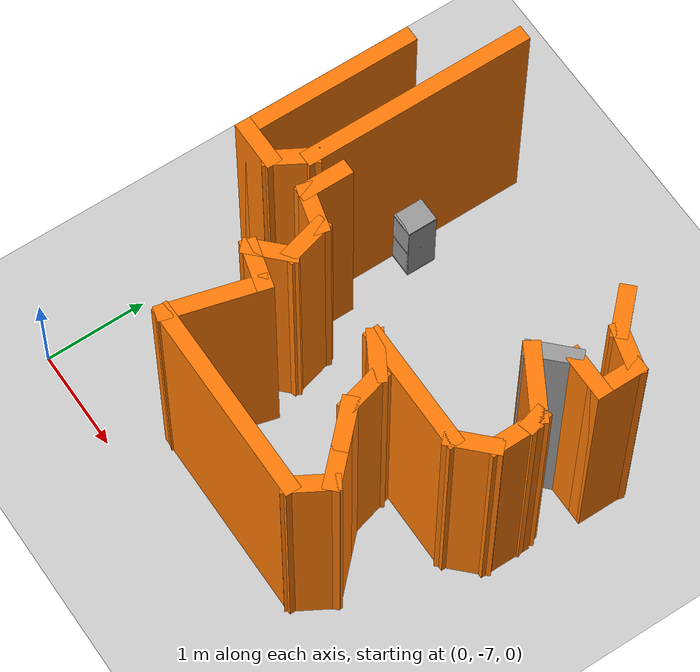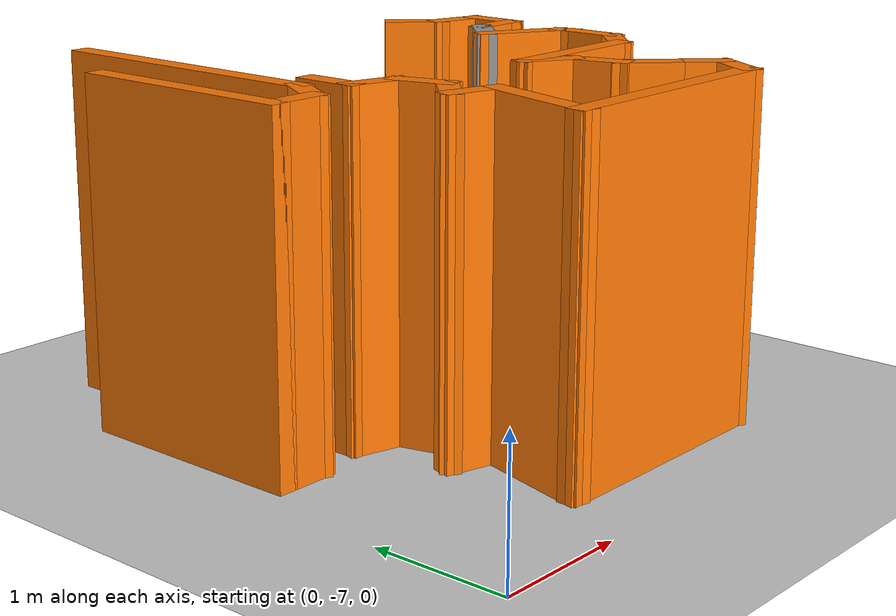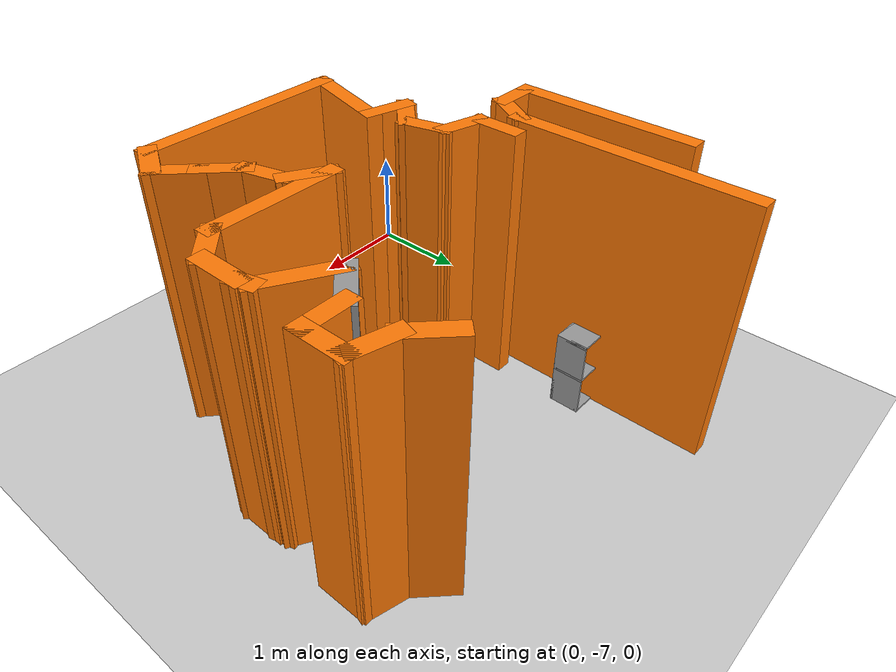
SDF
<sdf version="1.7">
 <world name="default">
  <model name="ground_plane">
   <static>1</static>
   <link name="link">
    <collision name="collision">
     <geometry><plane><normal>0 0 1</normal><size>100 100</size></plane></geometry>
     <surface>
      <contact><collide_bitmask>65535</collide_bitmask></contact>
      <friction><ode><mu>100</mu><mu2>50</mu2></ode></friction>
     </surface>
    </collision>
    <visual name="visual">
     <cast_shadows>0</cast_shadows>
     <geometry><plane><normal>0 0 1</normal><size>100 100</size></plane></geometry>
     <material>
      <script><uri>file://media/materials/scripts/gazebo.material</uri><name>Gazebo/Grey</name></script>
     </material>
    </visual>
   </link>
  </model>
  <model name="map_4">
   <pose>0.04124 -0.27835 0 0 -0 0</pose>
   <link name="Wall_100">
    <collision name="Wall_100_Collision">
     <geometry><box><size>0.5 0.15 2.5</size></box></geometry>
     <pose>0 0 1.25 0 -0 0</pose>
    </collision>
    <visual name="Wall_100_Visual">
     <pose>0 0 1.25 0 -0 0</pose>
     <geometry><box><size>0.5 0.15 2.5</size></box></geometry>
     <material>
      <script><uri>file://media/materials/scripts/gazebo.material</uri><name>Gazebo/Grey</name></script>
      <ambient>0.996078 0.47451 0.0196078 1</ambient>
     </material>
     <meta><layer>0</layer></meta>
    </visual>
    <pose>3.63966 -3.64447 0 0 -0 0</pose>
   </link>
   <link name="Wall_101">
    <collision name="Wall_101_Collision">
     <geometry><box><size>0.5 0.15 2.5</size></box></geometry>
     <pose>0 0 1.25 0 -0 0</pose>
    </collision>
    <visual name="Wall_101_Visual">
     <pose>0 0 1.25 0 -0 0</pose>
     <geometry><box><size>0.5 0.15 2.5</size></box></geometry>
     <material>
      <script><uri>file://media/materials/scripts/gazebo.material</uri><name>Gazebo/Grey</name></script>
      <ambient>0.996078 0.47451 0.0196078 1</ambient>
     </material>
     <meta><layer>0</layer></meta>
    </visual>
    <pose>3.81466 -3.46947 0 0 -0 1.5708</pose>
   </link>
   <link name="Wall_102">
    <collision name="Wall_102_Collision">
     <geometry><box><size>0.5 0.15 2.5</size></box></geometry>
     <pose>0 0 1.25 0 -0 0</pose>
    </collision>
    <visual name="Wall_102_Visual">
     <pose>0 0 1.25 0 -0 0</pose>
     <geometry><box><size>0.5 0.15 2.5</size></box></geometry>
     <material>
      <script><uri>file://media/materials/scripts/gazebo.material</uri><name>Gazebo/Grey</name></script>
      <ambient>0.996078 0.47451 0.0196078 1</ambient>
     </material>
     <meta><layer>0</layer></meta>
    </visual>
    <pose>3.64562 -3.24918 0 0 -0 2.87979</pose>
   </link>
   <link name="Wall_103">
    <collision name="Wall_103_Collision">
     <geometry><box><size>0.5 0.15 2.5</size></box></geometry>
     <pose>0 0 1.25 0 -0 0</pose>
    </collision>
    <visual name="Wall_103_Visual">
     <pose>0 0 1.25 0 -0 0</pose>
     <geometry><box><size>0.5 0.15 2.5</size></box></geometry>
     <material>
      <script><uri>file://media/materials/scripts/gazebo.material</uri><name>Gazebo/Grey</name></script>
      <ambient>0.996078 0.47451 0.0196078 1</ambient>
     </material>
     <meta><layer>0</layer></meta>
    </visual>
    <pose>3.35284 -3.08014 0 0 -0 2.35619</pose>
   </link>
   <link name="Wall_70">
    <collision name="Wall_70_Collision">
     <geometry><box><size>1.75 0.15 2.5</size></box></geometry>
     <pose>0 0 1.25 0 -0 0</pose>
    </collision>
    <visual name="Wall_70_Visual">
     <pose>0 0 1.25 0 -0 0</pose>
     <geometry><box><size>1.75 0.15 2.5</size></box></geometry>
     <material>
      <script><uri>file://media/materials/scripts/gazebo.material</uri><name>Gazebo/Grey</name></script>
      <ambient>0.996078 0.47451 0.0196078 1</ambient>
     </material>
     <meta><layer>0</layer></meta>
    </visual>
    <pose>0.201195 -3.88842 0 0 -0 -1.5708</pose>
   </link>
   <link name="Wall_73">
    <collision name="Wall_73_Collision">
     <geometry><box><size>0.5 0.15 2.5</size></box></geometry>
     <pose>0 0 1.25 0 -0 0</pose>
    </collision>
    <visual name="Wall_73_Visual">
     <pose>0 0 1.25 0 -0 0</pose>
     <geometry><box><size>0.5 0.15 2.5</size></box></geometry>
     <material>
      <script><uri>file://media/materials/scripts/gazebo.material</uri><name>Gazebo/Grey</name></script>
      <ambient>0.996078 0.47451 0.0196078 1</ambient>
     </material>
     <meta><layer>0</layer></meta>
    </visual>
    <pose>0.376195 -4.68842 0 0 -0 0</pose>
   </link>
   <link name="Wall_74">
    <collision name="Wall_74_Collision">
     <geometry><box><size>0.5 0.15 2.5</size></box></geometry>
     <pose>0 0 1.25 0 -0 0</pose>
    </collision>
    <visual name="Wall_74_Visual">
     <pose>0 0 1.25 0 -0 0</pose>
     <geometry><box><size>0.5 0.15 2.5</size></box></geometry>
     <material>
      <script><uri>file://media/materials/scripts/gazebo.material</uri><name>Gazebo/Grey</name></script>
      <ambient>0.996078 0.47451 0.0196078 1</ambient>
     </material>
     <meta><layer>0</layer></meta>
    </visual>
    <pose>0.638695 -4.53686 0 0 -0 1.0472</pose>
   </link>
   <link name="Wall_75">
    <collision name="Wall_75_Collision">
     <geometry><box><size>2.25 0.15 2.5</size></box></geometry>
     <pose>0 0 1.25 0 -0 0</pose>
    </collision>
    <visual name="Wall_75_Visual">
     <pose>0 0 1.25 0 -0 0</pose>
     <geometry><box><size>2.25 0.15 2.5</size></box></geometry>
     <material>
      <script><uri>file://media/materials/scripts/gazebo.material</uri><name>Gazebo/Grey</name></script>
      <ambient>0.996078 0.47451 0.0196078 1</ambient>
     </material>
     <meta><layer>0</layer></meta>
    </visual>
    <pose>0.726195 -3.33531 0 0 -0 1.5708</pose>
   </link>
   <link name="Wall_80">
    <collision name="Wall_80_Collision">
     <geometry><box><size>0.5 0.15 2.5</size></box></geometry>
     <pose>0 0 1.25 0 -0 0</pose>
    </collision>
    <visual name="Wall_80_Visual">
     <pose>0 0 1.25 0 -0 0</pose>
     <geometry><box><size>0.5 0.15 2.5</size></box></geometry>
     <material>
      <script><uri>file://media/materials/scripts/gazebo.material</uri><name>Gazebo/Grey</name></script>
      <ambient>0.996078 0.47451 0.0196078 1</ambient>
     </material>
     <meta><layer>0</layer></meta>
    </visual>
    <pose>0.979603 -4.43443 0 0 -0 -1.5708</pose>
   </link>
   <link name="Wall_81">
    <collision name="Wall_81_Collision">
     <geometry><box><size>0.5 0.15 2.5</size></box></geometry>
     <pose>0 0 1.25 0 -0 0</pose>
    </collision>
    <visual name="Wall_81_Visual">
     <pose>0 0 1.25 0 -0 0</pose>
     <geometry><box><size>0.5 0.15 2.5</size></box></geometry>
     <material>
      <script><uri>file://media/materials/scripts/gazebo.material</uri><name>Gazebo/Grey</name></script>
      <ambient>0.996078 0.47451 0.0196078 1</ambient>
     </material>
     <meta><layer>0</layer></meta>
    </visual>
    <pose>1.14864 -4.65472 0 0 -0 -0.261799</pose>
   </link>
   <link name="Wall_82">
    <collision name="Wall_82_Collision">
     <geometry><box><size>0.5 0.15 2.5</size></box></geometry>
     <pose>0 0 1.25 0 -0 0</pose>
    </collision>
    <visual name="Wall_82_Visual">
     <pose>0 0 1.25 0 -0 0</pose>
     <geometry><box><size>0.5 0.15 2.5</size></box></geometry>
     <material>
      <script><uri>file://media/materials/scripts/gazebo.material</uri><name>Gazebo/Grey</name></script>
      <ambient>0.996078 0.47451 0.0196078 1</ambient>
     </material>
     <meta><layer>0</layer></meta>
    </visual>
    <pose>1.36297 -4.86905 0 0 -0 -1.309</pose>
   </link>
   <link name="Wall_83">
    <collision name="Wall_83_Collision">
     <geometry><box><size>0.5 0.15 2.5</size></box></geometry>
     <pose>0 0 1.25 0 -0 0</pose>
    </collision>
    <visual name="Wall_83_Visual">
     <pose>0 0 1.25 0 -0 0</pose>
     <geometry><box><size>0.5 0.15 2.5</size></box></geometry>
     <material>
      <script><uri>file://media/materials/scripts/gazebo.material</uri><name>Gazebo/Grey</name></script>
      <ambient>0.996078 0.47451 0.0196078 1</ambient>
     </material>
     <meta><layer>0</layer></meta>
    </visual>
    <pose>1.28452 -5.16183 0 0 -0 -2.35619</pose>
   </link>
   <link name="Wall_84">
    <collision name="Wall_84_Collision">
     <geometry><box><size>0.5 0.15 2.5</size></box></geometry>
     <pose>0 0 1.25 0 -0 0</pose>
    </collision>
    <visual name="Wall_84_Visual">
     <pose>0 0 1.25 0 -0 0</pose>
     <geometry><box><size>0.5 0.15 2.5</size></box></geometry>
     <material>
      <script><uri>file://media/materials/scripts/gazebo.material</uri><name>Gazebo/Grey</name></script>
      <ambient>0.996078 0.47451 0.0196078 1</ambient>
     </material>
     <meta><layer>0</layer></meta>
    </visual>
    <pose>1.32981 -5.33087 0 0 -0 -0.261799</pose>
   </link>
   <link name="Wall_85">
    <collision name="Wall_85_Collision">
     <geometry><box><size>1 0.15 2.5</size></box></geometry>
     <pose>0 0 1.25 0 -0 0</pose>
    </collision>
    <visual name="Wall_85_Visual">
     <pose>0 0 1.25 0 -0 0</pose>
     <geometry><box><size>1 0.15 2.5</size></box></geometry>
     <material>
      <script><uri>file://media/materials/scripts/gazebo.material</uri><name>Gazebo/Grey</name></script>
      <ambient>0.996078 0.47451 0.0196078 1</ambient>
     </material>
     <meta><layer>0</layer></meta>
    </visual>
    <pose>1.38885 -5.78668 0 0 -0 -1.8326</pose>
   </link>
   <link name="Wall_86">
    <collision name="Wall_86_Collision">
     <geometry><box><size>2 0.15 2.5</size></box></geometry>
     <pose>0 0 1.25 0 -0 0</pose>
    </collision>
    <visual name="Wall_86_Visual">
     <pose>0 0 1.25 0 -0 0</pose>
     <geometry><box><size>2 0.15 2.5</size></box></geometry>
     <material>
      <script><uri>file://media/materials/scripts/gazebo.material</uri><name>Gazebo/Grey</name></script>
      <ambient>0.996078 0.47451 0.0196078 1</ambient>
     </material>
     <meta><layer>0</layer></meta>
    </visual>
    <pose>2.20385 -6.1972 0 0 -0 0</pose>
   </link>
   <link name="Wall_87">
    <collision name="Wall_87_Collision">
     <geometry><box><size>0.5 0.15 2.5</size></box></geometry>
     <pose>0 0 1.25 0 -0 0</pose>
    </collision>
    <visual name="Wall_87_Visual">
     <pose>0 0 1.25 0 -0 0</pose>
     <geometry><box><size>0.5 0.15 2.5</size></box></geometry>
     <material>
      <script><uri>file://media/materials/scripts/gazebo.material</uri><name>Gazebo/Grey</name></script>
      <ambient>0.996078 0.47451 0.0196078 1</ambient>
     </material>
     <meta><layer>0</layer></meta>
    </visual>
    <pose>3.21635 -6.04564 0 0 -0 1.0472</pose>
   </link>
   <link name="Wall_88">
    <collision name="Wall_88_Collision">
     <geometry><box><size>0.5 0.15 2.5</size></box></geometry>
     <pose>0 0 1.25 0 -0 0</pose>
    </collision>
    <visual name="Wall_88_Visual">
     <pose>0 0 1.25 0 -0 0</pose>
     <geometry><box><size>0.5 0.15 2.5</size></box></geometry>
     <material>
      <script><uri>file://media/materials/scripts/gazebo.material</uri><name>Gazebo/Grey</name></script>
      <ambient>0.996078 0.47451 0.0196078 1</ambient>
     </material>
     <meta><layer>0</layer></meta>
    </visual>
    <pose>3.18011 -5.77035 0 0 -0 2.35619</pose>
   </link>
   <link name="Wall_89">
    <collision name="Wall_89_Collision">
     <geometry><box><size>0.5 0.15 2.5</size></box></geometry>
     <pose>0 0 1.25 0 -0 0</pose>
    </collision>
    <visual name="Wall_89_Visual">
     <pose>0 0 1.25 0 -0 0</pose>
     <geometry><box><size>0.5 0.15 2.5</size></box></geometry>
     <material>
      <script><uri>file://media/materials/scripts/gazebo.material</uri><name>Gazebo/Grey</name></script>
      <ambient>0.996078 0.47451 0.0196078 1</ambient>
     </material>
     <meta><layer>0</layer></meta>
    </visual>
    <pose>2.93262 -5.52286 0 0 -0 2.35619</pose>
   </link>
   <link name="Wall_92">
    <collision name="Wall_92_Collision">
     <geometry><box><size>0.5 0.15 2.5</size></box></geometry>
     <pose>0 0 1.25 0 -0 0</pose>
    </collision>
    <visual name="Wall_92_Visual">
     <pose>0 0 1.25 0 -0 0</pose>
     <geometry><box><size>0.5 0.15 2.5</size></box></geometry>
     <material>
      <script><uri>file://media/materials/scripts/gazebo.material</uri><name>Gazebo/Grey</name></script>
      <ambient>0.996078 0.47451 0.0196078 1</ambient>
     </material>
     <meta><layer>0</layer></meta>
    </visual>
    <pose>2.76359 -5.23008 0 0 -0 1.8326</pose>
   </link>
   <link name="Wall_93">
    <collision name="Wall_93_Collision">
     <geometry><box><size>0.5 0.15 2.5</size></box></geometry>
     <pose>0 0 1.25 0 -0 0</pose>
    </collision>
    <visual name="Wall_93_Visual">
     <pose>0 0 1.25 0 -0 0</pose>
     <geometry><box><size>0.5 0.15 2.5</size></box></geometry>
     <material>
      <script><uri>file://media/materials/scripts/gazebo.material</uri><name>Gazebo/Grey</name></script>
      <ambient>0.996078 0.47451 0.0196078 1</ambient>
     </material>
     <meta><layer>0</layer></meta>
    </visual>
    <pose>2.56674 -4.97354 0 0 -0 2.61799</pose>
   </link>
   <link name="Wall_94">
    <collision name="Wall_94_Collision">
     <geometry><box><size>1.25 0.15 2.5</size></box></geometry>
     <pose>0 0 1.25 0 -0 0</pose>
    </collision>
    <visual name="Wall_94_Visual">
     <pose>0 0 1.25 0 -0 0</pose>
     <geometry><box><size>1.25 0.15 2.5</size></box></geometry>
     <material>
      <script><uri>file://media/materials/scripts/gazebo.material</uri><name>Gazebo/Grey</name></script>
      <ambient>0.996078 0.47451 0.0196078 1</ambient>
     </material>
     <meta><layer>0</layer></meta>
    </visual>
    <pose>2.96518 -4.88604 0 0 -0 0</pose>
   </link>
   <link name="Wall_95">
    <collision name="Wall_95_Collision">
     <geometry><box><size>0.5 0.15 2.5</size></box></geometry>
     <pose>0 0 1.25 0 -0 0</pose>
    </collision>
    <visual name="Wall_95_Visual">
     <pose>0 0 1.25 0 -0 0</pose>
     <geometry><box><size>0.5 0.15 2.5</size></box></geometry>
     <material>
      <script><uri>file://media/materials/scripts/gazebo.material</uri><name>Gazebo/Grey</name></script>
      <ambient>0.996078 0.47451 0.0196078 1</ambient>
     </material>
     <meta><layer>0</layer></meta>
    </visual>
    <pose>3.63893 -4.7623 0 0 -0 0.785398</pose>
   </link>
   <link name="Wall_96">
    <collision name="Wall_96_Collision">
     <geometry><box><size>0.5 0.15 2.5</size></box></geometry>
     <pose>0 0 1.25 0 -0 0</pose>
    </collision>
    <visual name="Wall_96_Visual">
     <pose>0 0 1.25 0 -0 0</pose>
     <geometry><box><size>0.5 0.15 2.5</size></box></geometry>
     <material>
      <script><uri>file://media/materials/scripts/gazebo.material</uri><name>Gazebo/Grey</name></script>
      <ambient>0.996078 0.47451 0.0196078 1</ambient>
     </material>
     <meta><layer>0</layer></meta>
    </visual>
    <pose>3.76267 -4.46355 0 0 -0 1.5708</pose>
   </link>
   <link name="Wall_97">
    <collision name="Wall_97_Collision">
     <geometry><box><size>0.25 0.15 2.5</size></box></geometry>
     <pose>0 0 1.25 0 -0 0</pose>
    </collision>
    <visual name="Wall_97_Visual">
     <pose>0 0 1.25 0 -0 0</pose>
     <geometry><box><size>0.25 0.15 2.5</size></box></geometry>
     <material>
      <script><uri>file://media/materials/scripts/gazebo.material</uri><name>Gazebo/Grey</name></script>
      <ambient>0.996078 0.47451 0.0196078 1</ambient>
     </material>
     <meta><layer>0</layer></meta>
    </visual>
    <pose>3.74973 -4.24026 0 0 -0 1.8326</pose>
   </link>
   <link name="Wall_98">
    <collision name="Wall_98_Collision">
     <geometry><box><size>0.75 0.15 2.5</size></box></geometry>
     <pose>0 0 1.25 0 -0 0</pose>
    </collision>
    <visual name="Wall_98_Visual">
     <pose>0 0 1.25 0 -0 0</pose>
     <geometry><box><size>0.75 0.15 2.5</size></box></geometry>
     <material>
      <script><uri>file://media/materials/scripts/gazebo.material</uri><name>Gazebo/Grey</name></script>
      <ambient>0.996078 0.47451 0.0196078 1</ambient>
     </material>
     <meta><layer>0</layer></meta>
    </visual>
    <pose>3.47698 -4.04196 0 0 -0 2.61799</pose>
   </link>
   <link name="Wall_99">
    <collision name="Wall_99_Collision">
     <geometry><box><size>0.5 0.15 2.5</size></box></geometry>
     <pose>0 0 1.25 0 -0 0</pose>
    </collision>
    <visual name="Wall_99_Visual">
     <pose>0 0 1.25 0 -0 0</pose>
     <geometry><box><size>0.5 0.15 2.5</size></box></geometry>
     <material>
      <script><uri>file://media/materials/scripts/gazebo.material</uri><name>Gazebo/Grey</name></script>
      <ambient>1 1 1 1</ambient>
     </material>
     <meta><layer>0</layer></meta>
    </visual>
    <pose>3.34092 -3.76822 0 0 -0 0.785398</pose>
   </link>
   <static>1</static>
  </model>
  <model name="转角床头柜">
   <link name="Wall_10">
    <pose>0.286 -0.148 0.384 0 -0 0</pose>
    <inertial>
     <mass>2.1259</mass>
     <inertia><ixx>0.0158</ixx><iyy>0.1202</iyy><izz>0.1046</izz><ixy>0</ixy><ixz>0</ixz><iyz>0</iyz></inertia>
    </inertial>
    <collision name="Wall_10_Collision"><geometry><box><size>0.02 0.296 0.768</size></box></geometry></collision>
    <visual name="Wall_10_Visual">
     <geometry><box><size>0.02 0.296 0.768</size></box></geometry>
     <material>
      <script><uri>file://media/materials/scripts/gazebo.material</uri><name>Gazebo/Grey</name></script>
      <ambient>1 1 1 1</ambient>
     </material>
    </visual>
   </link>
   <joint name="10_16" type="fixed">
    <pose>0 0 -0.374 0 -0 0</pose>
    <parent>Wall_16</parent>
    <child>Wall_10</child>
    <axis><xyz>1 0 0</xyz><limit><lower>-1e+16</lower><upper>1e+16</upper></limit></axis>
   </joint>
   <joint name="10_14" type="fixed">
    <parent>Wall_14</parent>
    <child>Wall_10</child>
    <axis><xyz>1 0 0</xyz><limit><lower>-1e+16</lower><upper>1e+16</upper></limit></axis>
   </joint>
   <joint name="10_12" type="fixed">
    <pose>0 0 0.374 0 -0 0</pose>
    <parent>Wall_12</parent>
    <child>Wall_10</child>
    <axis><xyz>1 0 0</xyz><limit><lower>-1e+16</lower><upper>1e+16</upper></limit></axis>
   </joint>
   <joint name="10_29" type="fixed">
    <pose>0 -0.148 0 0 -0 0</pose>
    <parent>Wall_29</parent>
    <child>Wall_10</child>
    <axis><xyz>1 0 0</xyz><limit><lower>-1e+16</lower><upper>1e+16</upper></limit></axis>
   </joint>
   <link name="Wall_12">
    <pose>0.148 -0.148 0.758 0 -0 0</pose>
    <inertial>
     <mass>0.8802</mass>
     <inertia><ixx>0.0065</ixx><iyy>0.0139</iyy><izz>0.0074</izz><ixy>0</ixy><ixz>0</ixz><iyz>0</iyz></inertia>
    </inertial>
    <collision name="Wall_12_Collision"><geometry><box><size>0.296 0.296 0.02</size></box></geometry></collision>
    <visual name="Wall_12_Visual">
     <geometry><box><size>0.296 0.296 0.02</size></box></geometry>
     <material>
      <script><uri>file://media/materials/scripts/gazebo.material</uri><name>Gazebo/Grey</name></script>
      <ambient>1 1 1 1</ambient>
     </material>
    </visual>
   </link>
   <joint name="12_29" type="fixed">
    <pose>0 -0.148 0 0 -0 0</pose>
    <parent>Wall_29</parent>
    <child>Wall_12</child>
    <axis><xyz>0 0 1</xyz><limit><lower>-1e+16</lower><upper>1e+16</upper></limit></axis>
   </joint>
   <link name="Wall_14">
    <pose>0.148 -0.148 0.384 0 -0 0</pose>
    <inertial>
     <mass>0.8802</mass>
     <inertia><ixx>0.0065</ixx><iyy>0.0139</iyy><izz>0.0074</izz><ixy>0</ixy><ixz>0</ixz><iyz>0</iyz></inertia>
    </inertial>
    <collision name="Wall_14_Collision"><geometry><box><size>0.296 0.296 0.02</size></box></geometry></collision>
    <visual name="Wall_14_Visual">
     <geometry><box><size>0.296 0.296 0.02</size></box></geometry>
     <material>
      <script><uri>file://media/materials/scripts/gazebo.material</uri><name>Gazebo/Grey</name></script>
      <ambient>1 1 1 1</ambient>
     </material>
    </visual>
   </link>
   <joint name="14_29" type="fixed">
    <pose>0 -0.148 0 0 -0 0</pose>
    <parent>Wall_29</parent>
    <child>Wall_14</child>
    <axis><xyz>0 1 0</xyz><limit><lower>-1e+16</lower><upper>1e+16</upper></limit></axis>
   </joint>
   <link name="Wall_16">
    <pose>0.148 -0.148 0.01 0 -0 0</pose>
    <inertial>
     <mass>0.8802</mass>
     <inertia><ixx>0.0065</ixx><iyy>0.0139</iyy><izz>0.0074</izz><ixy>0</ixy><ixz>0</ixz><iyz>0</iyz></inertia>
    </inertial>
    <collision name="Wall_16_Collision"><geometry><box><size>0.296 0.296 0.02</size></box></geometry></collision>
    <visual name="Wall_16_Visual">
     <geometry><box><size>0.296 0.296 0.02</size></box></geometry>
     <material>
      <script><uri>file://media/materials/scripts/gazebo.material</uri><name>Gazebo/Grey</name></script>
      <ambient>1 1 1 1</ambient>
     </material>
    </visual>
   </link>
   <joint name="16_29" type="fixed">
    <pose>0 -0.148 0 0 -0 0</pose>
    <parent>Wall_29</parent>
    <child>Wall_16</child>
    <axis><xyz>0 1 0</xyz><limit><lower>-1e+16</lower><upper>1e+16</upper></limit></axis>
   </joint>
   <link name="Wall_18">
    <pose>-0.148 0 0.01 0 -0 0</pose>
    <inertial>
     <mass>1.6525</mass>
     <inertia><ixx>0.0491</ixx><iyy>0.0613</iyy><izz>0.0123</izz><ixy>0</ixy><ixz>0</ixz><iyz>0</iyz></inertia>
    </inertial>
    <collision name="Wall_18_Collision"><geometry><box><size>0.296 0.592 0.02</size></box></geometry></collision>
    <visual name="Wall_18_Visual">
     <geometry><box><size>0.296 0.592 0.02</size></box></geometry>
     <material>
      <script><uri>file://media/materials/scripts/gazebo.material</uri><name>Gazebo/Grey</name></script>
      <ambient>1 1 1 1</ambient>
     </material>
    </visual>
   </link>
   <joint name="18_16" type="fixed">
    <pose>0.148 -0.148 0 0 -0 0</pose>
    <parent>Wall_16</parent>
    <child>Wall_18</child>
    <axis><xyz>1 0 0</xyz><limit><lower>-1e+16</lower><upper>1e+16</upper></limit></axis>
   </joint>
   <joint name="18_29" type="fixed">
    <pose>0 -0.296 0 0 -0 0</pose>
    <parent>Wall_29</parent>
    <child>Wall_18</child>
    <axis><xyz>0 1 0</xyz><limit><lower>-1e+16</lower><upper>1e+16</upper></limit></axis>
   </joint>
   <joint name="18_27" type="fixed">
    <pose>-0.148 0 0 0 -0 0</pose>
    <parent>Wall_27</parent>
    <child>Wall_18</child>
    <axis><xyz>1 0 0</xyz><limit><lower>-1e+16</lower><upper>1e+16</upper></limit></axis>
   </joint>
   <joint name="18_30" type="fixed">
    <pose>0 0.296 0 0 -0 0</pose>
    <parent>Wall_30</parent>
    <child>Wall_18</child>
    <axis><xyz>0 1 0</xyz><limit><lower>-1e+16</lower><upper>1e+16</upper></limit></axis>
   </joint>
   <link name="Wall_20">
    <pose>-0.148 0 0.384 0 -0 0</pose>
    <inertial>
     <mass>1.6525</mass>
     <inertia><ixx>0.0491</ixx><iyy>0.0613</iyy><izz>0.0123</izz><ixy>0</ixy><ixz>0</ixz><iyz>0</iyz></inertia>
    </inertial>
    <collision name="Wall_20_Collision"><geometry><box><size>0.296 0.592 0.02</size></box></geometry></collision>
    <visual name="Wall_20_Visual">
     <geometry><box><size>0.296 0.592 0.02</size></box></geometry>
     <material>
      <script><uri>file://media/materials/scripts/gazebo.material</uri><name>Gazebo/Grey</name></script>
      <ambient>1 1 1 1</ambient>
     </material>
    </visual>
   </link>
   <joint name="20_14" type="fixed">
    <pose>0.148 -0.148 0 0 -0 0</pose>
    <parent>Wall_14</parent>
    <child>Wall_20</child>
    <axis><xyz>1 0 0</xyz><limit><lower>-1e+16</lower><upper>1e+16</upper></limit></axis>
   </joint>
   <joint name="20_29" type="fixed">
    <pose>0 -0.296 0 0 -0 0</pose>
    <parent>Wall_29</parent>
    <child>Wall_20</child>
    <axis><xyz>0 1 0</xyz><limit><lower>-1e+16</lower><upper>1e+16</upper></limit></axis>
   </joint>
   <joint name="20_27" type="fixed">
    <pose>-0.148 0 0 0 -0 0</pose>
    <parent>Wall_27</parent>
    <child>Wall_20</child>
    <axis><xyz>1 0 0</xyz><limit><lower>-1e+16</lower><upper>1e+16</upper></limit></axis>
   </joint>
   <joint name="20_30" type="fixed">
    <pose>0 0.296 0 0 -0 0</pose>
    <parent>Wall_30</parent>
    <child>Wall_20</child>
    <axis><xyz>0 1 0</xyz><limit><lower>-1e+16</lower><upper>1e+16</upper></limit></axis>
   </joint>
   <link name="Wall_22">
    <pose>-0.148 0 0.758 0 -0 0</pose>
    <inertial>
     <mass>1.6525</mass>
     <inertia><ixx>0.0491</ixx><iyy>0.0613</iyy><izz>0.0123</izz><ixy>0</ixy><ixz>0</ixz><iyz>0</iyz></inertia>
    </inertial>
    <collision name="Wall_22_Collision"><geometry><box><size>0.296 0.592 0.02</size></box></geometry></collision>
    <visual name="Wall_22_Visual">
     <geometry><box><size>0.296 0.592 0.02</size></box></geometry>
     <material>
      <script><uri>file://media/materials/scripts/gazebo.material</uri><name>Gazebo/Grey</name></script>
      <ambient>1 1 1 1</ambient>
     </material>
    </visual>
   </link>
   <joint name="22_12" type="fixed">
    <pose>0.148 -0.148 0 0 -0 0</pose>
    <parent>Wall_12</parent>
    <child>Wall_22</child>
    <axis><xyz>1 0 0</xyz><limit><lower>-1e+16</lower><upper>1e+16</upper></limit></axis>
   </joint>
   <joint name="22_29" type="fixed">
    <pose>0 -0.296 0 0 -0 0</pose>
    <parent>Wall_29</parent>
    <child>Wall_22</child>
    <axis><xyz>0 1 0</xyz><limit><lower>-1e+16</lower><upper>1e+16</upper></limit></axis>
   </joint>
   <joint name="22_27" type="fixed">
    <pose>-0.148 0 0 0 -0 0</pose>
    <parent>Wall_27</parent>
    <child>Wall_22</child>
    <axis><xyz>1 0 0</xyz><limit><lower>-1e+16</lower><upper>1e+16</upper></limit></axis>
   </joint>
   <joint name="22_30" type="fixed">
    <pose>0 0.296 0 0 -0 0</pose>
    <parent>Wall_30</parent>
    <child>Wall_22</child>
    <axis><xyz>0 1 0</xyz><limit><lower>-1e+16</lower><upper>1e+16</upper></limit></axis>
   </joint>
   <link name="Wall_27">
    <pose>-0.286 0 0.384 0 -0 0</pose>
    <inertial>
     <mass>4.2589</mass>
     <inertia><ixx>0.1266</ixx><iyy>0.3358</iyy><izz>0.2095</izz><ixy>0</ixy><ixz>0</ixz><iyz>0</iyz></inertia>
    </inertial>
    <collision name="Wall_27_Collision"><geometry><box><size>0.02 0.592 0.768</size></box></geometry></collision>
    <visual name="Wall_27_Visual">
     <geometry><box><size>0.02 0.592 0.768</size></box></geometry>
     <material>
      <script><uri>file://media/materials/scripts/gazebo.material</uri><name>Gazebo/Grey</name></script>
      <ambient>1 1 1 1</ambient>
     </material>
    </visual>
   </link>
   <joint name="27_30" type="fixed">
    <pose>0 0.296 0 0 -0 0</pose>
    <parent>Wall_30</parent>
    <child>Wall_27</child>
    <axis><xyz>0 1 0</xyz><limit><lower>-1e+16</lower><upper>1e+16</upper></limit></axis>
   </joint>
   <link name="Wall_29">
    <pose>0 -0.286 0.384 0 -0 0</pose>
    <inertial>
     <mass>4.3176</mass>
     <inertia><ixx>0.134</ixx><iyy>0.2091</iyy><izz>0.3428</izz><ixy>0</ixy><ixz>0</ixz><iyz>0</iyz></inertia>
    </inertial>
    <collision name="Wall_29_Collision"><geometry><box><size>0.592 0.02 0.768</size></box></geometry></collision>
    <visual name="Wall_29_Visual">
     <geometry><box><size>0.592 0.02 0.768</size></box></geometry>
     <material>
      <script><uri>file://media/materials/scripts/gazebo.material</uri><name>Gazebo/Grey</name></script>
      <ambient>1 1 1 1</ambient>
     </material>
    </visual>
   </link>
   <link name="Wall_30">
    <pose>-0.148 0.286 0.384 0 -0 0</pose>
    <inertial>
     <mass>2.1093</mass>
     <inertia><ixx>0.1021</ixx><iyy>0.0157</iyy><izz>0.1177</izz><ixy>0</ixy><ixz>0</ixz><iyz>0</iyz></inertia>
    </inertial>
    <collision name="Wall_30_Collision"><geometry><box><size>0.296 0.02 0.768</size></box></geometry></collision>
    <visual name="Wall_30_Visual">
     <geometry><box><size>0.296 0.02 0.768</size></box></geometry>
     <material>
      <script><uri>file://media/materials/scripts/gazebo.material</uri><name>Gazebo/Grey</name></script>
      <ambient>1 1 1 1</ambient>
     </material>
    </visual>
   </link>
   <static>1</static>
   <pose>0.496834 -3.5721 0 0 -0 0</pose>
  </model>
  <model name="转角床头柜_0">
   <link name="Wall_10">
    <pose>0.286 -0.148 0.384 0 -0 0</pose>
    <inertial>
     <mass>2.1259</mass>
     <inertia><ixx>0.0158</ixx><iyy>0.1202</iyy><izz>0.1046</izz><ixy>0</ixy><ixz>0</ixz><iyz>0</iyz></inertia>
    </inertial>
    <collision name="Wall_10_Collision"><geometry><box><size>0.02 0.296 0.768</size></box></geometry></collision>
    <visual name="Wall_10_Visual">
     <geometry><box><size>0.02 0.296 0.768</size></box></geometry>
     <material>
      <script><uri>file://media/materials/scripts/gazebo.material</uri><name>Gazebo/Grey</name></script>
      <ambient>1 1 1 1</ambient>
     </material>
    </visual>
   </link>
   <joint name="10_16" type="fixed">
    <pose>0 0 -0.374 0 -0 0</pose>
    <parent>Wall_16</parent>
    <child>Wall_10</child>
    <axis><xyz>1 0 0</xyz><limit><lower>-1e+16</lower><upper>1e+16</upper></limit></axis>
   </joint>
   <joint name="10_14" type="fixed">
    <parent>Wall_14</parent>
    <child>Wall_10</child>
    <axis><xyz>1 0 0</xyz><limit><lower>-1e+16</lower><upper>1e+16</upper></limit></axis>
   </joint>
   <joint name="10_12" type="fixed">
    <pose>0 0 0.374 0 -0 0</pose>
    <parent>Wall_12</parent>
    <child>Wall_10</child>
    <axis><xyz>1 0 0</xyz><limit><lower>-1e+16</lower><upper>1e+16</upper></limit></axis>
   </joint>
   <joint name="10_29" type="fixed">
    <pose>0 -0.148 0 0 -0 0</pose>
    <parent>Wall_29</parent>
    <child>Wall_10</child>
    <axis><xyz>1 0 0</xyz><limit><lower>-1e+16</lower><upper>1e+16</upper></limit></axis>
   </joint>
   <link name="Wall_12">
    <pose>0.148 -0.148 0.758 0 -0 0</pose>
    <inertial>
     <mass>0.8802</mass>
     <inertia><ixx>0.0065</ixx><iyy>0.0139</iyy><izz>0.0074</izz><ixy>0</ixy><ixz>0</ixz><iyz>0</iyz></inertia>
    </inertial>
    <collision name="Wall_12_Collision"><geometry><box><size>0.296 0.296 0.02</size></box></geometry></collision>
    <visual name="Wall_12_Visual">
     <geometry><box><size>0.296 0.296 0.02</size></box></geometry>
     <material>
      <script><uri>file://media/materials/scripts/gazebo.material</uri><name>Gazebo/Grey</name></script>
      <ambient>1 1 1 1</ambient>
     </material>
    </visual>
   </link>
   <joint name="12_29" type="fixed">
    <pose>0 -0.148 0 0 -0 0</pose>
    <parent>Wall_29</parent>
    <child>Wall_12</child>
    <axis><xyz>0 0 1</xyz><limit><lower>-1e+16</lower><upper>1e+16</upper></limit></axis>
   </joint>
   <link name="Wall_14">
    <pose>0.148 -0.148 0.384 0 -0 0</pose>
    <inertial>
     <mass>0.8802</mass>
     <inertia><ixx>0.0065</ixx><iyy>0.0139</iyy><izz>0.0074</izz><ixy>0</ixy><ixz>0</ixz><iyz>0</iyz></inertia>
    </inertial>
    <collision name="Wall_14_Collision"><geometry><box><size>0.296 0.296 0.02</size></box></geometry></collision>
    <visual name="Wall_14_Visual">
     <geometry><box><size>0.296 0.296 0.02</size></box></geometry>
     <material>
      <script><uri>file://media/materials/scripts/gazebo.material</uri><name>Gazebo/Grey</name></script>
      <ambient>1 1 1 1</ambient>
     </material>
    </visual>
   </link>
   <joint name="14_29" type="fixed">
    <pose>0 -0.148 0 0 -0 0</pose>
    <parent>Wall_29</parent>
    <child>Wall_14</child>
    <axis><xyz>0 1 0</xyz><limit><lower>-1e+16</lower><upper>1e+16</upper></limit></axis>
   </joint>
   <link name="Wall_16">
    <pose>0.148 -0.148 0.01 0 -0 0</pose>
    <inertial>
     <mass>0.8802</mass>
     <inertia><ixx>0.0065</ixx><iyy>0.0139</iyy><izz>0.0074</izz><ixy>0</ixy><ixz>0</ixz><iyz>0</iyz></inertia>
    </inertial>
    <collision name="Wall_16_Collision"><geometry><box><size>0.296 0.296 0.02</size></box></geometry></collision>
    <visual name="Wall_16_Visual">
     <geometry><box><size>0.296 0.296 0.02</size></box></geometry>
     <material>
      <script><uri>file://media/materials/scripts/gazebo.material</uri><name>Gazebo/Grey</name></script>
      <ambient>1 1 1 1</ambient>
     </material>
    </visual>
   </link>
   <joint name="16_29" type="fixed">
    <pose>0 -0.148 0 0 -0 0</pose>
    <parent>Wall_29</parent>
    <child>Wall_16</child>
    <axis><xyz>0 1 0</xyz><limit><lower>-1e+16</lower><upper>1e+16</upper></limit></axis>
   </joint>
   <link name="Wall_18">
    <pose>-0.148 0 0.01 0 -0 0</pose>
    <inertial>
     <mass>1.6525</mass>
     <inertia><ixx>0.0491</ixx><iyy>0.0613</iyy><izz>0.0123</izz><ixy>0</ixy><ixz>0</ixz><iyz>0</iyz></inertia>
    </inertial>
    <collision name="Wall_18_Collision"><geometry><box><size>0.296 0.592 0.02</size></box></geometry></collision>
    <visual name="Wall_18_Visual">
     <geometry><box><size>0.296 0.592 0.02</size></box></geometry>
     <material>
      <script><uri>file://media/materials/scripts/gazebo.material</uri><name>Gazebo/Grey</name></script>
      <ambient>1 1 1 1</ambient>
     </material>
    </visual>
   </link>
   <joint name="18_16" type="fixed">
    <pose>0.148 -0.148 0 0 -0 0</pose>
    <parent>Wall_16</parent>
    <child>Wall_18</child>
    <axis><xyz>1 0 0</xyz><limit><lower>-1e+16</lower><upper>1e+16</upper></limit></axis>
   </joint>
   <joint name="18_29" type="fixed">
    <pose>0 -0.296 0 0 -0 0</pose>
    <parent>Wall_29</parent>
    <child>Wall_18</child>
    <axis><xyz>0 1 0</xyz><limit><lower>-1e+16</lower><upper>1e+16</upper></limit></axis>
   </joint>
   <joint name="18_27" type="fixed">
    <pose>-0.148 0 0 0 -0 0</pose>
    <parent>Wall_27</parent>
    <child>Wall_18</child>
    <axis><xyz>1 0 0</xyz><limit><lower>-1e+16</lower><upper>1e+16</upper></limit></axis>
   </joint>
   <joint name="18_30" type="fixed">
    <pose>0 0.296 0 0 -0 0</pose>
    <parent>Wall_30</parent>
    <child>Wall_18</child>
    <axis><xyz>0 1 0</xyz><limit><lower>-1e+16</lower><upper>1e+16</upper></limit></axis>
   </joint>
   <link name="Wall_20">
    <pose>-0.148 0 0.384 0 -0 0</pose>
    <inertial>
     <mass>1.6525</mass>
     <inertia><ixx>0.0491</ixx><iyy>0.0613</iyy><izz>0.0123</izz><ixy>0</ixy><ixz>0</ixz><iyz>0</iyz></inertia>
    </inertial>
    <collision name="Wall_20_Collision"><geometry><box><size>0.296 0.592 0.02</size></box></geometry></collision>
    <visual name="Wall_20_Visual">
     <geometry><box><size>0.296 0.592 0.02</size></box></geometry>
     <material>
      <script><uri>file://media/materials/scripts/gazebo.material</uri><name>Gazebo/Grey</name></script>
      <ambient>1 1 1 1</ambient>
     </material>
    </visual>
   </link>
   <joint name="20_14" type="fixed">
    <pose>0.148 -0.148 0 0 -0 0</pose>
    <parent>Wall_14</parent>
    <child>Wall_20</child>
    <axis><xyz>1 0 0</xyz><limit><lower>-1e+16</lower><upper>1e+16</upper></limit></axis>
   </joint>
   <joint name="20_29" type="fixed">
    <pose>0 -0.296 0 0 -0 0</pose>
    <parent>Wall_29</parent>
    <child>Wall_20</child>
    <axis><xyz>0 1 0</xyz><limit><lower>-1e+16</lower><upper>1e+16</upper></limit></axis>
   </joint>
   <joint name="20_27" type="fixed">
    <pose>-0.148 0 0 0 -0 0</pose>
    <parent>Wall_27</parent>
    <child>Wall_20</child>
    <axis><xyz>1 0 0</xyz><limit><lower>-1e+16</lower><upper>1e+16</upper></limit></axis>
   </joint>
   <joint name="20_30" type="fixed">
    <pose>0 0.296 0 0 -0 0</pose>
    <parent>Wall_30</parent>
    <child>Wall_20</child>
    <axis><xyz>0 1 0</xyz><limit><lower>-1e+16</lower><upper>1e+16</upper></limit></axis>
   </joint>
   <link name="Wall_22">
    <pose>-0.148 0 0.758 0 -0 0</pose>
    <inertial>
     <mass>1.6525</mass>
     <inertia><ixx>0.0491</ixx><iyy>0.0613</iyy><izz>0.0123</izz><ixy>0</ixy><ixz>0</ixz><iyz>0</iyz></inertia>
    </inertial>
    <collision name="Wall_22_Collision"><geometry><box><size>0.296 0.592 0.02</size></box></geometry></collision>
    <visual name="Wall_22_Visual">
     <geometry><box><size>0.296 0.592 0.02</size></box></geometry>
     <material>
      <script><uri>file://media/materials/scripts/gazebo.material</uri><name>Gazebo/Grey</name></script>
      <ambient>1 1 1 1</ambient>
     </material>
    </visual>
   </link>
   <joint name="22_12" type="fixed">
    <pose>0.148 -0.148 0 0 -0 0</pose>
    <parent>Wall_12</parent>
    <child>Wall_22</child>
    <axis><xyz>1 0 0</xyz><limit><lower>-1e+16</lower><upper>1e+16</upper></limit></axis>
   </joint>
   <joint name="22_29" type="fixed">
    <pose>0 -0.296 0 0 -0 0</pose>
    <parent>Wall_29</parent>
    <child>Wall_22</child>
    <axis><xyz>0 1 0</xyz><limit><lower>-1e+16</lower><upper>1e+16</upper></limit></axis>
   </joint>
   <joint name="22_27" type="fixed">
    <pose>-0.148 0 0 0 -0 0</pose>
    <parent>Wall_27</parent>
    <child>Wall_22</child>
    <axis><xyz>1 0 0</xyz><limit><lower>-1e+16</lower><upper>1e+16</upper></limit></axis>
   </joint>
   <joint name="22_30" type="fixed">
    <pose>0 0.296 0 0 -0 0</pose>
    <parent>Wall_30</parent>
    <child>Wall_22</child>
    <axis><xyz>0 1 0</xyz><limit><lower>-1e+16</lower><upper>1e+16</upper></limit></axis>
   </joint>
   <link name="Wall_27">
    <pose>-0.286 0 0.384 0 -0 0</pose>
    <inertial>
     <mass>4.2589</mass>
     <inertia><ixx>0.1266</ixx><iyy>0.3358</iyy><izz>0.2095</izz><ixy>0</ixy><ixz>0</ixz><iyz>0</iyz></inertia>
    </inertial>
    <collision name="Wall_27_Collision"><geometry><box><size>0.02 0.592 0.768</size></box></geometry></collision>
    <visual name="Wall_27_Visual">
     <geometry><box><size>0.02 0.592 0.768</size></box></geometry>
     <material>
      <script><uri>file://media/materials/scripts/gazebo.material</uri><name>Gazebo/Grey</name></script>
      <ambient>1 1 1 1</ambient>
     </material>
    </visual>
   </link>
   <joint name="27_30" type="fixed">
    <pose>0 0.296 0 0 -0 0</pose>
    <parent>Wall_30</parent>
    <child>Wall_27</child>
    <axis><xyz>0 1 0</xyz><limit><lower>-1e+16</lower><upper>1e+16</upper></limit></axis>
   </joint>
   <link name="Wall_29">
    <pose>0 -0.286 0.384 0 -0 0</pose>
    <inertial>
     <mass>4.3176</mass>
     <inertia><ixx>0.134</ixx><iyy>0.2091</iyy><izz>0.3428</izz><ixy>0</ixy><ixz>0</ixz><iyz>0</iyz></inertia>
    </inertial>
    <collision name="Wall_29_Collision"><geometry><box><size>0.592 0.02 0.768</size></box></geometry></collision>
    <visual name="Wall_29_Visual">
     <geometry><box><size>0.592 0.02 0.768</size></box></geometry>
     <material>
      <script><uri>file://media/materials/scripts/gazebo.material</uri><name>Gazebo/Grey</name></script>
      <ambient>1 1 1 1</ambient>
     </material>
    </visual>
   </link>
   <link name="Wall_30">
    <pose>-0.148 0.286 0.384 0 -0 0</pose>
    <inertial>
     <mass>2.1093</mass>
     <inertia><ixx>0.1021</ixx><iyy>0.0157</iyy><izz>0.1177</izz><ixy>0</ixy><ixz>0</ixz><iyz>0</iyz></inertia>
    </inertial>
    <collision name="Wall_30_Collision"><geometry><box><size>0.296 0.02 0.768</size></box></geometry></collision>
    <visual name="Wall_30_Visual">
     <geometry><box><size>0.296 0.02 0.768</size></box></geometry>
     <material>
      <script><uri>file://media/materials/scripts/gazebo.material</uri><name>Gazebo/Grey</name></script>
      <ambient>1 1 1 1</ambient>
     </material>
    </visual>
   </link>
   <static>1</static>
   <pose>0.787765 -3.56525 0 0 -0 0</pose>
  </model>
 </world>
</sdf>
